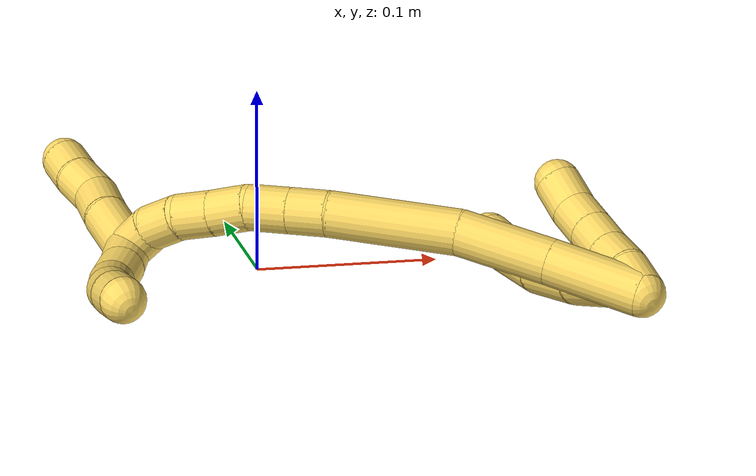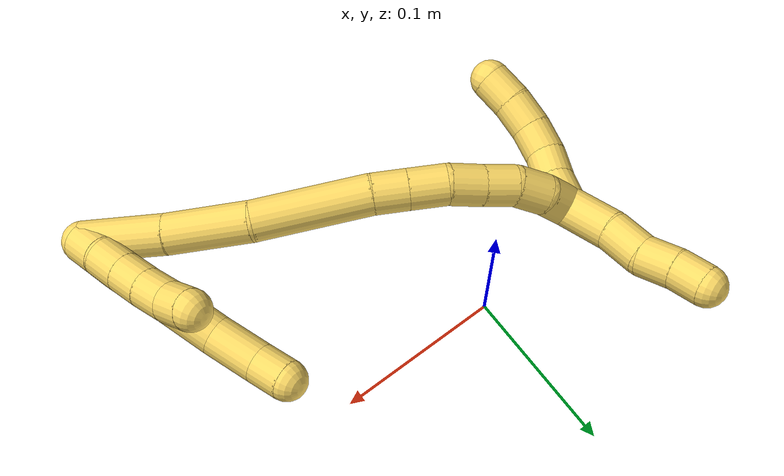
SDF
<sdf version="1.7">
 <world name="default">
  <model name="5">
   <static>0</static>
   <link name="5">
    <collision name="collision-cylinder-e_1_2_8">
     <pose>-0.000529 0.005274 0.013811 -0.364788 -0.035785 0.006601</pose>
     <geometry><cylinder><radius>0.0125</radius><length>0.029586</length></cylinder></geometry>
     <surface>
      <friction><ode><mu>1.16</mu><mu2>1.16</mu2><slip1>0</slip1><slip2>0</slip2></ode></friction>
      <contact><ode><kp>1e+06</kp><kd>1</kd><max_vel>0</max_vel><min_depth>0.001</min_depth></ode></contact>
     </surface>
    </collision>
    <visual name="visual-cylinder-e_1_2_8">
     <pose>-0.000529 0.005274 0.013811 -0.364788 -0.035785 0.006601</pose>
     <geometry><cylinder><radius>0.0125</radius><length>0.029586</length></cylinder></geometry>
     <material><ambient>1 0.858824 0.4 1</ambient></material>
    </visual>
    <collision name="collision-cylinder-e_2_8_9">
     <pose>-0.003211 0.017733 0.041059 -0.491036 -0.140342 0.03522</pose>
     <geometry><cylinder><radius>0.0125</radius><length>0.030777</length></cylinder></geometry>
     <surface>
      <friction><ode><mu>1.16</mu><mu2>1.16</mu2><slip1>0</slip1><slip2>0</slip2></ode></friction>
      <contact><ode><kp>1e+06</kp><kd>1</kd><max_vel>0</max_vel><min_depth>0.001</min_depth></ode></contact>
     </surface>
    </collision>
    <visual name="visual-cylinder-e_2_8_9">
     <pose>-0.003211 0.017733 0.041059 -0.491036 -0.140342 0.03522</pose>
     <geometry><cylinder><radius>0.0125</radius><length>0.030777</length></cylinder></geometry>
     <material><ambient>1 0.858824 0.4 1</ambient></material>
    </visual>
    <collision name="collision-cylinder-e_3_9_10">
     <pose>-0.006853 0.031807 0.071895 -0.376998 -0.079405 0.015155</pose>
     <geometry><cylinder><radius>0.0125</radius><length>0.037546</length></cylinder></geometry>
     <surface>
      <friction><ode><mu>1.16</mu><mu2>1.16</mu2><slip1>0</slip1><slip2>0</slip2></ode></friction>
      <contact><ode><kp>1e+06</kp><kd>1</kd><max_vel>0</max_vel><min_depth>0.001</min_depth></ode></contact>
     </surface>
    </collision>
    <visual name="visual-cylinder-e_3_9_10">
     <pose>-0.006853 0.031807 0.071895 -0.376998 -0.079405 0.015155</pose>
     <geometry><cylinder><radius>0.0125</radius><length>0.037546</length></cylinder></geometry>
     <material><ambient>1 0.858824 0.4 1</ambient></material>
    </visual>
    <collision name="collision-cylinder-e_4_10_11">
     <pose>-0.00926 0.041601 0.104969 -0.183262 -0.057536 0.005288</pose>
     <geometry><cylinder><radius>0.0125</radius><length>0.031937</length></cylinder></geometry>
     <surface>
      <friction><ode><mu>1.16</mu><mu2>1.16</mu2><slip1>0</slip1><slip2>0</slip2></ode></friction>
      <contact><ode><kp>1e+06</kp><kd>1</kd><max_vel>0</max_vel><min_depth>0.001</min_depth></ode></contact>
     </surface>
    </collision>
    <visual name="visual-cylinder-e_4_10_11">
     <pose>-0.00926 0.041601 0.104969 -0.183262 -0.057536 0.005288</pose>
     <geometry><cylinder><radius>0.0125</radius><length>0.031937</length></cylinder></geometry>
     <material><ambient>1 0.858824 0.4 1</ambient></material>
    </visual>
    <collision name="collision-cylinder-e_5_11_6">
     <pose>-0.010581 0.045323 0.130681 -0.081178 -0.040002 0.001625</pose>
     <geometry><cylinder><radius>0.0125</radius><length>0.020154</length></cylinder></geometry>
     <surface>
      <friction><ode><mu>1.16</mu><mu2>1.16</mu2><slip1>0</slip1><slip2>0</slip2></ode></friction>
      <contact><ode><kp>1e+06</kp><kd>1</kd><max_vel>0</max_vel><min_depth>0.001</min_depth></ode></contact>
     </surface>
    </collision>
    <visual name="visual-cylinder-e_5_11_6">
     <pose>-0.010581 0.045323 0.130681 -0.081178 -0.040002 0.001625</pose>
     <geometry><cylinder><radius>0.0125</radius><length>0.020154</length></cylinder></geometry>
     <material><ambient>1 0.858824 0.4 1</ambient></material>
    </visual>
    <collision name="collision-cylinder-e_1_2_12">
     <pose>0.000826 -0.001067 0.009909 0.107268 0.082665 0.00444</pose>
     <geometry><cylinder><radius>0.0125</radius><length>0.02</length></cylinder></geometry>
     <surface>
      <friction><ode><mu>1.16</mu><mu2>1.16</mu2><slip1>0</slip1><slip2>0</slip2></ode></friction>
      <contact><ode><kp>1e+06</kp><kd>1</kd><max_vel>0</max_vel><min_depth>0.001</min_depth></ode></contact>
     </surface>
    </collision>
    <visual name="visual-cylinder-e_1_2_12">
     <pose>0.000826 -0.001067 0.009909 0.107268 0.082665 0.00444</pose>
     <geometry><cylinder><radius>0.0125</radius><length>0.02</length></cylinder></geometry>
     <material><ambient>1 0.858824 0.4 1</ambient></material>
    </visual>
    <collision name="collision-cylinder-e_2_12_13">
     <pose>0.00202 -0.001544 0.029793 -0.059089 0.03684 -0.001089</pose>
     <geometry><cylinder><radius>0.0125</radius><length>0.02</length></cylinder></geometry>
     <surface>
      <friction><ode><mu>1.16</mu><mu2>1.16</mu2><slip1>0</slip1><slip2>0</slip2></ode></friction>
      <contact><ode><kp>1e+06</kp><kd>1</kd><max_vel>0</max_vel><min_depth>0.001</min_depth></ode></contact>
     </surface>
    </collision>
    <visual name="visual-cylinder-e_2_12_13">
     <pose>0.00202 -0.001544 0.029793 -0.059089 0.03684 -0.001089</pose>
     <geometry><cylinder><radius>0.0125</radius><length>0.02</length></cylinder></geometry>
     <material><ambient>1 0.858824 0.4 1</ambient></material>
    </visual>
    <collision name="collision-cylinder-e_3_13_14">
     <pose>0.002805 -0.001247 0.049756 0.029406 0.041666 0.000613</pose>
     <geometry><cylinder><radius>0.0125</radius><length>0.02</length></cylinder></geometry>
     <surface>
      <friction><ode><mu>1.16</mu><mu2>1.16</mu2><slip1>0</slip1><slip2>0</slip2></ode></friction>
      <contact><ode><kp>1e+06</kp><kd>1</kd><max_vel>0</max_vel><min_depth>0.001</min_depth></ode></contact>
     </surface>
    </collision>
    <visual name="visual-cylinder-e_3_13_14">
     <pose>0.002805 -0.001247 0.049756 0.029406 0.041666 0.000613</pose>
     <geometry><cylinder><radius>0.0125</radius><length>0.02</length></cylinder></geometry>
     <material><ambient>1 0.858824 0.4 1</ambient></material>
    </visual>
    <collision name="collision-cylinder-e_4_14_15">
     <pose>0.003249 -0.002224 0.069719 0.068365 0.002803 9.6e-05</pose>
     <geometry><cylinder><radius>0.0125</radius><length>0.02</length></cylinder></geometry>
     <surface>
      <friction><ode><mu>1.16</mu><mu2>1.16</mu2><slip1>0</slip1><slip2>0</slip2></ode></friction>
      <contact><ode><kp>1e+06</kp><kd>1</kd><max_vel>0</max_vel><min_depth>0.001</min_depth></ode></contact>
     </surface>
    </collision>
    <visual name="visual-cylinder-e_4_14_15">
     <pose>0.003249 -0.002224 0.069719 0.068365 0.002803 9.6e-05</pose>
     <geometry><cylinder><radius>0.0125</radius><length>0.02</length></cylinder></geometry>
     <material><ambient>1 0.858824 0.4 1</ambient></material>
    </visual>
    <collision name="collision-cylinder-e_5_15_5">
     <pose>0.003056 -0.006134 0.089158 0.328638 -0.022162 -0.003675</pose>
     <geometry><cylinder><radius>0.0125</radius><length>0.02</length></cylinder></geometry>
     <surface>
      <friction><ode><mu>1.16</mu><mu2>1.16</mu2><slip1>0</slip1><slip2>0</slip2></ode></friction>
      <contact><ode><kp>1e+06</kp><kd>1</kd><max_vel>0</max_vel><min_depth>0.001</min_depth></ode></contact>
     </surface>
    </collision>
    <visual name="visual-cylinder-e_5_15_5">
     <pose>0.003056 -0.006134 0.089158 0.328638 -0.022162 -0.003675</pose>
     <geometry><cylinder><radius>0.0125</radius><length>0.02</length></cylinder></geometry>
     <material><ambient>1 0.858824 0.4 1</ambient></material>
    </visual>
    <collision name="collision-cylinder-e_1_2_16">
     <pose>-0.015508 -0.000507 0.020968 0.024179 -0.636668 -0.007968</pose>
     <geometry><cylinder><radius>0.0125</radius><length>0.052169</length></cylinder></geometry>
     <surface>
      <friction><ode><mu>1.16</mu><mu2>1.16</mu2><slip1>0</slip1><slip2>0</slip2></ode></friction>
      <contact><ode><kp>1e+06</kp><kd>1</kd><max_vel>0</max_vel><min_depth>0.001</min_depth></ode></contact>
     </surface>
    </collision>
    <visual name="visual-cylinder-e_1_2_16">
     <pose>-0.015508 -0.000507 0.020968 0.024179 -0.636668 -0.007968</pose>
     <geometry><cylinder><radius>0.0125</radius><length>0.052169</length></cylinder></geometry>
     <material><ambient>1 0.858824 0.4 1</ambient></material>
    </visual>
    <collision name="collision-cylinder-e_2_16_17">
     <pose>-0.047589 -0.001995 0.061711 0.04954 -0.696928 -0.018001</pose>
     <geometry><cylinder><radius>0.0125</radius><length>0.05164</length></cylinder></geometry>
     <surface>
      <friction><ode><mu>1.16</mu><mu2>1.16</mu2><slip1>0</slip1><slip2>0</slip2></ode></friction>
      <contact><ode><kp>1e+06</kp><kd>1</kd><max_vel>0</max_vel><min_depth>0.001</min_depth></ode></contact>
     </surface>
    </collision>
    <visual name="visual-cylinder-e_2_16_17">
     <pose>-0.047589 -0.001995 0.061711 0.04954 -0.696928 -0.018001</pose>
     <geometry><cylinder><radius>0.0125</radius><length>0.05164</length></cylinder></geometry>
     <material><ambient>1 0.858824 0.4 1</ambient></material>
    </visual>
    <collision name="collision-cylinder-e_3_17_18">
     <pose>-0.091159 -0.001111 0.104449 -0.080995 -0.864362 0.037376</pose>
     <geometry><cylinder><radius>0.0125</radius><length>0.070982</length></cylinder></geometry>
     <surface>
      <friction><ode><mu>1.16</mu><mu2>1.16</mu2><slip1>0</slip1><slip2>0</slip2></ode></friction>
      <contact><ode><kp>1e+06</kp><kd>1</kd><max_vel>0</max_vel><min_depth>0.001</min_depth></ode></contact>
     </surface>
    </collision>
    <visual name="visual-cylinder-e_3_17_18">
     <pose>-0.091159 -0.001111 0.104449 -0.080995 -0.864362 0.037376</pose>
     <geometry><cylinder><radius>0.0125</radius><length>0.070982</length></cylinder></geometry>
     <material><ambient>1 0.858824 0.4 1</ambient></material>
    </visual>
    <collision name="collision-cylinder-e_4_18_19">
     <pose>-0.125783 0.002247 0.134428 -0.20978 -0.815942 0.090943</pose>
     <geometry><cylinder><radius>0.0125</radius><length>0.020941</length></cylinder></geometry>
     <surface>
      <friction><ode><mu>1.16</mu><mu2>1.16</mu2><slip1>0</slip1><slip2>0</slip2></ode></friction>
      <contact><ode><kp>1e+06</kp><kd>1</kd><max_vel>0</max_vel><min_depth>0.001</min_depth></ode></contact>
     </surface>
    </collision>
    <visual name="visual-cylinder-e_4_18_19">
     <pose>-0.125783 0.002247 0.134428 -0.20978 -0.815942 0.090943</pose>
     <geometry><cylinder><radius>0.0125</radius><length>0.020941</length></cylinder></geometry>
     <material><ambient>1 0.858824 0.4 1</ambient></material>
    </visual>
    <collision name="collision-cylinder-e_5_19_20">
     <pose>-0.141809 0.005448 0.149221 -0.216089 -0.812202 0.093215</pose>
     <geometry><cylinder><radius>0.0125</radius><length>0.023146</length></cylinder></geometry>
     <surface>
      <friction><ode><mu>1.16</mu><mu2>1.16</mu2><slip1>0</slip1><slip2>0</slip2></ode></friction>
      <contact><ode><kp>1e+06</kp><kd>1</kd><max_vel>0</max_vel><min_depth>0.001</min_depth></ode></contact>
     </surface>
    </collision>
    <visual name="visual-cylinder-e_5_19_20">
     <pose>-0.141809 0.005448 0.149221 -0.216089 -0.812202 0.093215</pose>
     <geometry><cylinder><radius>0.0125</radius><length>0.023146</length></cylinder></geometry>
     <material><ambient>1 0.858824 0.4 1</ambient></material>
    </visual>
    <collision name="collision-cylinder-e_6_20_21">
     <pose>-0.1574 0.011265 0.163506 -0.563254 -0.751344 0.227232</pose>
     <geometry><cylinder><radius>0.0125</radius><length>0.02107</length></cylinder></geometry>
     <surface>
      <friction><ode><mu>1.16</mu><mu2>1.16</mu2><slip1>0</slip1><slip2>0</slip2></ode></friction>
      <contact><ode><kp>1e+06</kp><kd>1</kd><max_vel>0</max_vel><min_depth>0.001</min_depth></ode></contact>
     </surface>
    </collision>
    <visual name="visual-cylinder-e_6_20_21">
     <pose>-0.1574 0.011265 0.163506 -0.563254 -0.751344 0.227232</pose>
     <geometry><cylinder><radius>0.0125</radius><length>0.02107</length></cylinder></geometry>
     <material><ambient>1 0.858824 0.4 1</ambient></material>
    </visual>
    <collision name="collision-cylinder-e_7_21_22">
     <pose>-0.171561 0.018825 0.176315 -0.500925 -0.770423 0.206726</pose>
     <geometry><cylinder><radius>0.0125</radius><length>0.020016</length></cylinder></geometry>
     <surface>
      <friction><ode><mu>1.16</mu><mu2>1.16</mu2><slip1>0</slip1><slip2>0</slip2></ode></friction>
      <contact><ode><kp>1e+06</kp><kd>1</kd><max_vel>0</max_vel><min_depth>0.001</min_depth></ode></contact>
     </surface>
    </collision>
    <visual name="visual-cylinder-e_7_21_22">
     <pose>-0.171561 0.018825 0.176315 -0.500925 -0.770423 0.206726</pose>
     <geometry><cylinder><radius>0.0125</radius><length>0.020016</length></cylinder></geometry>
     <material><ambient>1 0.858824 0.4 1</ambient></material>
    </visual>
    <collision name="collision-cylinder-e_8_22_23">
     <pose>-0.18377 0.028174 0.188777 -0.763575 -0.55068 0.225887</pose>
     <geometry><cylinder><radius>0.0125</radius><length>0.020024</length></cylinder></geometry>
     <surface>
      <friction><ode><mu>1.16</mu><mu2>1.16</mu2><slip1>0</slip1><slip2>0</slip2></ode></friction>
      <contact><ode><kp>1e+06</kp><kd>1</kd><max_vel>0</max_vel><min_depth>0.001</min_depth></ode></contact>
     </surface>
    </collision>
    <visual name="visual-cylinder-e_8_22_23">
     <pose>-0.18377 0.028174 0.188777 -0.763575 -0.55068 0.225887</pose>
     <geometry><cylinder><radius>0.0125</radius><length>0.020024</length></cylinder></geometry>
     <material><ambient>1 0.858824 0.4 1</ambient></material>
    </visual>
    <collision name="collision-cylinder-e_9_23_1">
     <pose>-0.193651 0.042015 0.198878 -1.11056 -0.482425 0.3029</pose>
     <geometry><cylinder><radius>0.0125</radius><length>0.020012</length></cylinder></geometry>
     <surface>
      <friction><ode><mu>1.16</mu><mu2>1.16</mu2><slip1>0</slip1><slip2>0</slip2></ode></friction>
      <contact><ode><kp>1e+06</kp><kd>1</kd><max_vel>0</max_vel><min_depth>0.001</min_depth></ode></contact>
     </surface>
    </collision>
    <visual name="visual-cylinder-e_9_23_1">
     <pose>-0.193651 0.042015 0.198878 -1.11056 -0.482425 0.3029</pose>
     <geometry><cylinder><radius>0.0125</radius><length>0.020012</length></cylinder></geometry>
     <material><ambient>1 0.858824 0.4 1</ambient></material>
    </visual>
    <collision name="collision-cylinder-e_1_1_24">
     <pose>-0.203954 0.049615 0.194578 3.10006 -0.601745 -3.00794</pose>
     <geometry><cylinder><radius>0.0125</radius><length>0.02</length></cylinder></geometry>
     <surface>
      <friction><ode><mu>1.16</mu><mu2>1.16</mu2><slip1>0</slip1><slip2>0</slip2></ode></friction>
      <contact><ode><kp>1e+06</kp><kd>1</kd><max_vel>0</max_vel><min_depth>0.001</min_depth></ode></contact>
     </surface>
    </collision>
    <visual name="visual-cylinder-e_1_1_24">
     <pose>-0.203954 0.049615 0.194578 3.10006 -0.601745 -3.00794</pose>
     <geometry><cylinder><radius>0.0125</radius><length>0.02</length></cylinder></geometry>
     <material><ambient>1 0.858824 0.4 1</ambient></material>
    </visual>
    <collision name="collision-cylinder-e_2_24_25">
     <pose>-0.215865 0.048071 0.17863 2.98702 -0.675234 -2.70737</pose>
     <geometry><cylinder><radius>0.0125</radius><length>0.02</length></cylinder></geometry>
     <surface>
      <friction><ode><mu>1.16</mu><mu2>1.16</mu2><slip1>0</slip1><slip2>0</slip2></ode></friction>
      <contact><ode><kp>1e+06</kp><kd>1</kd><max_vel>0</max_vel><min_depth>0.001</min_depth></ode></contact>
     </surface>
    </collision>
    <visual name="visual-cylinder-e_2_24_25">
     <pose>-0.215865 0.048071 0.17863 2.98702 -0.675234 -2.70737</pose>
     <geometry><cylinder><radius>0.0125</radius><length>0.02</length></cylinder></geometry>
     <material><ambient>1 0.858824 0.4 1</ambient></material>
    </visual>
    <collision name="collision-cylinder-e_3_25_26">
     <pose>-0.226332 0.043015 0.162709 2.70253 -0.435127 -1.56149</pose>
     <geometry><cylinder><radius>0.0125</radius><length>0.02</length></cylinder></geometry>
     <surface>
      <friction><ode><mu>1.16</mu><mu2>1.16</mu2><slip1>0</slip1><slip2>0</slip2></ode></friction>
      <contact><ode><kp>1e+06</kp><kd>1</kd><max_vel>0</max_vel><min_depth>0.001</min_depth></ode></contact>
     </surface>
    </collision>
    <visual name="visual-cylinder-e_3_25_26">
     <pose>-0.226332 0.043015 0.162709 2.70253 -0.435127 -1.56149</pose>
     <geometry><cylinder><radius>0.0125</radius><length>0.02</length></cylinder></geometry>
     <material><ambient>1 0.858824 0.4 1</ambient></material>
    </visual>
    <collision name="collision-cylinder-e_4_26_27">
     <pose>-0.233254 0.034638 0.146002 2.65259 -0.274101 -1.00995</pose>
     <geometry><cylinder><radius>0.0125</radius><length>0.02</length></cylinder></geometry>
     <surface>
      <friction><ode><mu>1.16</mu><mu2>1.16</mu2><slip1>0</slip1><slip2>0</slip2></ode></friction>
      <contact><ode><kp>1e+06</kp><kd>1</kd><max_vel>0</max_vel><min_depth>0.001</min_depth></ode></contact>
     </surface>
    </collision>
    <visual name="visual-cylinder-e_4_26_27">
     <pose>-0.233254 0.034638 0.146002 2.65259 -0.274101 -1.00995</pose>
     <geometry><cylinder><radius>0.0125</radius><length>0.02</length></cylinder></geometry>
     <material><ambient>1 0.858824 0.4 1</ambient></material>
    </visual>
    <collision name="collision-cylinder-e_5_27_4">
     <pose>-0.237598 0.026086 0.128499 2.72086 -0.164476 -0.736782</pose>
     <geometry><cylinder><radius>0.0125</radius><length>0.02</length></cylinder></geometry>
     <surface>
      <friction><ode><mu>1.16</mu><mu2>1.16</mu2><slip1>0</slip1><slip2>0</slip2></ode></friction>
      <contact><ode><kp>1e+06</kp><kd>1</kd><max_vel>0</max_vel><min_depth>0.001</min_depth></ode></contact>
     </surface>
    </collision>
    <visual name="visual-cylinder-e_5_27_4">
     <pose>-0.237598 0.026086 0.128499 2.72086 -0.164476 -0.736782</pose>
     <geometry><cylinder><radius>0.0125</radius><length>0.02</length></cylinder></geometry>
     <material><ambient>1 0.858824 0.4 1</ambient></material>
    </visual>
    <collision name="collision-cylinder-e_1_1_28">
     <pose>-0.197425 0.049932 0.219668 0.001511 0.05146 3.9e-05</pose>
     <geometry><cylinder><radius>0.0125</radius><length>0.033751</length></cylinder></geometry>
     <surface>
      <friction><ode><mu>1.16</mu><mu2>1.16</mu2><slip1>0</slip1><slip2>0</slip2></ode></friction>
      <contact><ode><kp>1e+06</kp><kd>1</kd><max_vel>0</max_vel><min_depth>0.001</min_depth></ode></contact>
     </surface>
    </collision>
    <visual name="visual-cylinder-e_1_1_28">
     <pose>-0.197425 0.049932 0.219668 0.001511 0.05146 3.9e-05</pose>
     <geometry><cylinder><radius>0.0125</radius><length>0.033751</length></cylinder></geometry>
     <material><ambient>1 0.858824 0.4 1</ambient></material>
    </visual>
    <collision name="collision-cylinder-e_2_28_29">
     <pose>-0.194306 0.051036 0.248462 -0.094312 0.185473 -0.008778</pose>
     <geometry><cylinder><radius>0.0125</radius><length>0.024408</length></cylinder></geometry>
     <surface>
      <friction><ode><mu>1.16</mu><mu2>1.16</mu2><slip1>0</slip1><slip2>0</slip2></ode></friction>
      <contact><ode><kp>1e+06</kp><kd>1</kd><max_vel>0</max_vel><min_depth>0.001</min_depth></ode></contact>
     </surface>
    </collision>
    <visual name="visual-cylinder-e_2_28_29">
     <pose>-0.194306 0.051036 0.248462 -0.094312 0.185473 -0.008778</pose>
     <geometry><cylinder><radius>0.0125</radius><length>0.024408</length></cylinder></geometry>
     <material><ambient>1 0.858824 0.4 1</ambient></material>
    </visual>
    <collision name="collision-cylinder-e_3_29_30">
     <pose>-0.193049 0.052116 0.271228 0.004546 -0.09147 -0.000208</pose>
     <geometry><cylinder><radius>0.0125</radius><length>0.02174</length></cylinder></geometry>
     <surface>
      <friction><ode><mu>1.16</mu><mu2>1.16</mu2><slip1>0</slip1><slip2>0</slip2></ode></friction>
      <contact><ode><kp>1e+06</kp><kd>1</kd><max_vel>0</max_vel><min_depth>0.001</min_depth></ode></contact>
     </surface>
    </collision>
    <visual name="visual-cylinder-e_3_29_30">
     <pose>-0.193049 0.052116 0.271228 0.004546 -0.09147 -0.000208</pose>
     <geometry><cylinder><radius>0.0125</radius><length>0.02174</length></cylinder></geometry>
     <material><ambient>1 0.858824 0.4 1</ambient></material>
    </visual>
    <collision name="collision-cylinder-e_4_30_3">
     <pose>-0.193546 0.052404 0.292085 -0.033587 0.049342 -0.000829</pose>
     <geometry><cylinder><radius>0.0125</radius><length>0.020101</length></cylinder></geometry>
     <surface>
      <friction><ode><mu>1.16</mu><mu2>1.16</mu2><slip1>0</slip1><slip2>0</slip2></ode></friction>
      <contact><ode><kp>1e+06</kp><kd>1</kd><max_vel>0</max_vel><min_depth>0.001</min_depth></ode></contact>
     </surface>
    </collision>
    <visual name="visual-cylinder-e_4_30_3">
     <pose>-0.193546 0.052404 0.292085 -0.033587 0.049342 -0.000829</pose>
     <geometry><cylinder><radius>0.0125</radius><length>0.020101</length></cylinder></geometry>
     <material><ambient>1 0.858824 0.4 1</ambient></material>
    </visual>
    <collision name="collision-sphere-3">
     <pose>-0.19305 0.052741 0.302118 0 -0 0</pose>
     <geometry><sphere><radius>0.0125</radius></sphere></geometry>
     <surface>
      <friction><ode><mu>1.16</mu><mu2>1.16</mu2><slip1>0</slip1><slip2>0</slip2></ode></friction>
      <contact><ode><kp>1e+06</kp><kd>1</kd><max_vel>0</max_vel><min_depth>0.001</min_depth></ode></contact>
     </surface>
    </collision>
    <visual name="visual-sphere-3">
     <pose>-0.19305 0.052741 0.302118 0 -0 0</pose>
     <geometry><sphere><radius>0.0125</radius></sphere></geometry>
     <material><ambient>1 0.858824 0.4 1</ambient></material>
    </visual>
    <collision name="collision-sphere-30">
     <pose>-0.194042 0.052067 0.282053 0 -0 0</pose>
     <geometry><sphere><radius>0.0125</radius></sphere></geometry>
     <surface>
      <friction><ode><mu>1.16</mu><mu2>1.16</mu2><slip1>0</slip1><slip2>0</slip2></ode></friction>
      <contact><ode><kp>1e+06</kp><kd>1</kd><max_vel>0</max_vel><min_depth>0.001</min_depth></ode></contact>
     </surface>
    </collision>
    <visual name="visual-sphere-30">
     <pose>-0.194042 0.052067 0.282053 0 -0 0</pose>
     <geometry><sphere><radius>0.0125</radius></sphere></geometry>
     <material><ambient>1 0.858824 0.4 1</ambient></material>
    </visual>
    <collision name="collision-sphere-29">
     <pose>-0.192056 0.052166 0.260404 0 -0 0</pose>
     <geometry><sphere><radius>0.0125</radius></sphere></geometry>
     <surface>
      <friction><ode><mu>1.16</mu><mu2>1.16</mu2><slip1>0</slip1><slip2>0</slip2></ode></friction>
      <contact><ode><kp>1e+06</kp><kd>1</kd><max_vel>0</max_vel><min_depth>0.001</min_depth></ode></contact>
     </surface>
    </collision>
    <visual name="visual-sphere-29">
     <pose>-0.192056 0.052166 0.260404 0 -0 0</pose>
     <geometry><sphere><radius>0.0125</radius></sphere></geometry>
     <material><ambient>1 0.858824 0.4 1</ambient></material>
    </visual>
    <collision name="collision-sphere-28">
     <pose>-0.196557 0.049906 0.236521 0 -0 0</pose>
     <geometry><sphere><radius>0.0125</radius></sphere></geometry>
     <surface>
      <friction><ode><mu>1.16</mu><mu2>1.16</mu2><slip1>0</slip1><slip2>0</slip2></ode></friction>
      <contact><ode><kp>1e+06</kp><kd>1</kd><max_vel>0</max_vel><min_depth>0.001</min_depth></ode></contact>
     </surface>
    </collision>
    <visual name="visual-sphere-28">
     <pose>-0.196557 0.049906 0.236521 0 -0 0</pose>
     <geometry><sphere><radius>0.0125</radius></sphere></geometry>
     <material><ambient>1 0.858824 0.4 1</ambient></material>
    </visual>
    <collision name="collision-sphere-4">
     <pose>-0.239235 0.022057 0.119495 0 -0 0</pose>
     <geometry><sphere><radius>0.0125</radius></sphere></geometry>
     <surface>
      <friction><ode><mu>1.16</mu><mu2>1.16</mu2><slip1>0</slip1><slip2>0</slip2></ode></friction>
      <contact><ode><kp>1e+06</kp><kd>1</kd><max_vel>0</max_vel><min_depth>0.001</min_depth></ode></contact>
     </surface>
    </collision>
    <visual name="visual-sphere-4">
     <pose>-0.239235 0.022057 0.119495 0 -0 0</pose>
     <geometry><sphere><radius>0.0125</radius></sphere></geometry>
     <material><ambient>1 0.858824 0.4 1</ambient></material>
    </visual>
    <collision name="collision-sphere-27">
     <pose>-0.23596 0.030116 0.137504 0 -0 0</pose>
     <geometry><sphere><radius>0.0125</radius></sphere></geometry>
     <surface>
      <friction><ode><mu>1.16</mu><mu2>1.16</mu2><slip1>0</slip1><slip2>0</slip2></ode></friction>
      <contact><ode><kp>1e+06</kp><kd>1</kd><max_vel>0</max_vel><min_depth>0.001</min_depth></ode></contact>
     </surface>
    </collision>
    <visual name="visual-sphere-27">
     <pose>-0.23596 0.030116 0.137504 0 -0 0</pose>
     <geometry><sphere><radius>0.0125</radius></sphere></geometry>
     <material><ambient>1 0.858824 0.4 1</ambient></material>
    </visual>
    <collision name="collision-sphere-26">
     <pose>-0.230547 0.03916 0.154501 0 -0 0</pose>
     <geometry><sphere><radius>0.0125</radius></sphere></geometry>
     <surface>
      <friction><ode><mu>1.16</mu><mu2>1.16</mu2><slip1>0</slip1><slip2>0</slip2></ode></friction>
      <contact><ode><kp>1e+06</kp><kd>1</kd><max_vel>0</max_vel><min_depth>0.001</min_depth></ode></contact>
     </surface>
    </collision>
    <visual name="visual-sphere-26">
     <pose>-0.230547 0.03916 0.154501 0 -0 0</pose>
     <geometry><sphere><radius>0.0125</radius></sphere></geometry>
     <material><ambient>1 0.858824 0.4 1</ambient></material>
    </visual>
    <collision name="collision-sphere-25">
     <pose>-0.222116 0.046869 0.170917 0 -0 0</pose>
     <geometry><sphere><radius>0.0125</radius></sphere></geometry>
     <surface>
      <friction><ode><mu>1.16</mu><mu2>1.16</mu2><slip1>0</slip1><slip2>0</slip2></ode></friction>
      <contact><ode><kp>1e+06</kp><kd>1</kd><max_vel>0</max_vel><min_depth>0.001</min_depth></ode></contact>
     </surface>
    </collision>
    <visual name="visual-sphere-25">
     <pose>-0.222116 0.046869 0.170917 0 -0 0</pose>
     <geometry><sphere><radius>0.0125</radius></sphere></geometry>
     <material><ambient>1 0.858824 0.4 1</ambient></material>
    </visual>
    <collision name="collision-sphere-24">
     <pose>-0.209615 0.049273 0.186342 0 -0 0</pose>
     <geometry><sphere><radius>0.0125</radius></sphere></geometry>
     <surface>
      <friction><ode><mu>1.16</mu><mu2>1.16</mu2><slip1>0</slip1><slip2>0</slip2></ode></friction>
      <contact><ode><kp>1e+06</kp><kd>1</kd><max_vel>0</max_vel><min_depth>0.001</min_depth></ode></contact>
     </surface>
    </collision>
    <visual name="visual-sphere-24">
     <pose>-0.209615 0.049273 0.186342 0 -0 0</pose>
     <geometry><sphere><radius>0.0125</radius></sphere></geometry>
     <material><ambient>1 0.858824 0.4 1</ambient></material>
    </visual>
    <collision name="collision-sphere-1">
     <pose>-0.198293 0.049957 0.202815 0 -0 0</pose>
     <geometry><sphere><radius>0.0125</radius></sphere></geometry>
     <surface>
      <friction><ode><mu>1.16</mu><mu2>1.16</mu2><slip1>0</slip1><slip2>0</slip2></ode></friction>
      <contact><ode><kp>1e+06</kp><kd>1</kd><max_vel>0</max_vel><min_depth>0.001</min_depth></ode></contact>
     </surface>
    </collision>
    <visual name="visual-sphere-1">
     <pose>-0.198293 0.049957 0.202815 0 -0 0</pose>
     <geometry><sphere><radius>0.0125</radius></sphere></geometry>
     <material><ambient>1 0.858824 0.4 1</ambient></material>
    </visual>
    <collision name="collision-sphere-23">
     <pose>-0.189009 0.034073 0.194941 0 -0 0</pose>
     <geometry><sphere><radius>0.0125</radius></sphere></geometry>
     <surface>
      <friction><ode><mu>1.16</mu><mu2>1.16</mu2><slip1>0</slip1><slip2>0</slip2></ode></friction>
      <contact><ode><kp>1e+06</kp><kd>1</kd><max_vel>0</max_vel><min_depth>0.001</min_depth></ode></contact>
     </surface>
    </collision>
    <visual name="visual-sphere-23">
     <pose>-0.189009 0.034073 0.194941 0 -0 0</pose>
     <geometry><sphere><radius>0.0125</radius></sphere></geometry>
     <material><ambient>1 0.858824 0.4 1</ambient></material>
    </visual>
    <collision name="collision-sphere-22">
     <pose>-0.178531 0.022274 0.182614 0 -0 0</pose>
     <geometry><sphere><radius>0.0125</radius></sphere></geometry>
     <surface>
      <friction><ode><mu>1.16</mu><mu2>1.16</mu2><slip1>0</slip1><slip2>0</slip2></ode></friction>
      <contact><ode><kp>1e+06</kp><kd>1</kd><max_vel>0</max_vel><min_depth>0.001</min_depth></ode></contact>
     </surface>
    </collision>
    <visual name="visual-sphere-22">
     <pose>-0.178531 0.022274 0.182614 0 -0 0</pose>
     <geometry><sphere><radius>0.0125</radius></sphere></geometry>
     <material><ambient>1 0.858824 0.4 1</ambient></material>
    </visual>
    <collision name="collision-sphere-21">
     <pose>-0.164591 0.015376 0.170015 0 -0 0</pose>
     <geometry><sphere><radius>0.0125</radius></sphere></geometry>
     <surface>
      <friction><ode><mu>1.16</mu><mu2>1.16</mu2><slip1>0</slip1><slip2>0</slip2></ode></friction>
      <contact><ode><kp>1e+06</kp><kd>1</kd><max_vel>0</max_vel><min_depth>0.001</min_depth></ode></contact>
     </surface>
    </collision>
    <visual name="visual-sphere-21">
     <pose>-0.164591 0.015376 0.170015 0 -0 0</pose>
     <geometry><sphere><radius>0.0125</radius></sphere></geometry>
     <material><ambient>1 0.858824 0.4 1</ambient></material>
    </visual>
    <collision name="collision-sphere-6">
     <pose>-0.010984 0.04614 0.140716 0 -0 0</pose>
     <geometry><sphere><radius>0.0125</radius></sphere></geometry>
     <surface>
      <friction><ode><mu>1.16</mu><mu2>1.16</mu2><slip1>0</slip1><slip2>0</slip2></ode></friction>
      <contact><ode><kp>1e+06</kp><kd>1</kd><max_vel>0</max_vel><min_depth>0.001</min_depth></ode></contact>
     </surface>
    </collision>
    <visual name="visual-sphere-6">
     <pose>-0.010984 0.04614 0.140716 0 -0 0</pose>
     <geometry><sphere><radius>0.0125</radius></sphere></geometry>
     <material><ambient>1 0.858824 0.4 1</ambient></material>
    </visual>
    <collision name="collision-sphere-11">
     <pose>-0.010178 0.044507 0.120645 0 -0 0</pose>
     <geometry><sphere><radius>0.0125</radius></sphere></geometry>
     <surface>
      <friction><ode><mu>1.16</mu><mu2>1.16</mu2><slip1>0</slip1><slip2>0</slip2></ode></friction>
      <contact><ode><kp>1e+06</kp><kd>1</kd><max_vel>0</max_vel><min_depth>0.001</min_depth></ode></contact>
     </surface>
    </collision>
    <visual name="visual-sphere-11">
     <pose>-0.010178 0.044507 0.120645 0 -0 0</pose>
     <geometry><sphere><radius>0.0125</radius></sphere></geometry>
     <material><ambient>1 0.858824 0.4 1</ambient></material>
    </visual>
    <collision name="collision-sphere-10">
     <pose>-0.008342 0.038696 0.089294 0 -0 0</pose>
     <geometry><sphere><radius>0.0125</radius></sphere></geometry>
     <surface>
      <friction><ode><mu>1.16</mu><mu2>1.16</mu2><slip1>0</slip1><slip2>0</slip2></ode></friction>
      <contact><ode><kp>1e+06</kp><kd>1</kd><max_vel>0</max_vel><min_depth>0.001</min_depth></ode></contact>
     </surface>
    </collision>
    <visual name="visual-sphere-10">
     <pose>-0.008342 0.038696 0.089294 0 -0 0</pose>
     <geometry><sphere><radius>0.0125</radius></sphere></geometry>
     <material><ambient>1 0.858824 0.4 1</ambient></material>
    </visual>
    <collision name="collision-sphere-9">
     <pose>-0.005364 0.024918 0.054495 0 -0 0</pose>
     <geometry><sphere><radius>0.0125</radius></sphere></geometry>
     <surface>
      <friction><ode><mu>1.16</mu><mu2>1.16</mu2><slip1>0</slip1><slip2>0</slip2></ode></friction>
      <contact><ode><kp>1e+06</kp><kd>1</kd><max_vel>0</max_vel><min_depth>0.001</min_depth></ode></contact>
     </surface>
    </collision>
    <visual name="visual-sphere-9">
     <pose>-0.005364 0.024918 0.054495 0 -0 0</pose>
     <geometry><sphere><radius>0.0125</radius></sphere></geometry>
     <material><ambient>1 0.858824 0.4 1</ambient></material>
    </visual>
    <collision name="collision-sphere-2">
     <geometry><sphere><radius>0.0125</radius></sphere></geometry>
     <surface>
      <friction><ode><mu>1.16</mu><mu2>1.16</mu2><slip1>0</slip1><slip2>0</slip2></ode></friction>
      <contact><ode><kp>1e+06</kp><kd>1</kd><max_vel>0</max_vel><min_depth>0.001</min_depth></ode></contact>
     </surface>
    </collision>
    <visual name="visual-sphere-2">
     <geometry><sphere><radius>0.0125</radius></sphere></geometry>
     <material><ambient>1 0.858824 0.4 1</ambient></material>
    </visual>
    <collision name="collision-sphere-19">
     <pose>-0.133409 0.003741 0.141445 0 -0 0</pose>
     <geometry><sphere><radius>0.0125</radius></sphere></geometry>
     <surface>
      <friction><ode><mu>1.16</mu><mu2>1.16</mu2><slip1>0</slip1><slip2>0</slip2></ode></friction>
      <contact><ode><kp>1e+06</kp><kd>1</kd><max_vel>0</max_vel><min_depth>0.001</min_depth></ode></contact>
     </surface>
    </collision>
    <visual name="visual-sphere-19">
     <pose>-0.133409 0.003741 0.141445 0 -0 0</pose>
     <geometry><sphere><radius>0.0125</radius></sphere></geometry>
     <material><ambient>1 0.858824 0.4 1</ambient></material>
    </visual>
    <collision name="collision-sphere-8">
     <pose>-0.001059 0.010548 0.027622 0 -0 0</pose>
     <geometry><sphere><radius>0.0125</radius></sphere></geometry>
     <surface>
      <friction><ode><mu>1.16</mu><mu2>1.16</mu2><slip1>0</slip1><slip2>0</slip2></ode></friction>
      <contact><ode><kp>1e+06</kp><kd>1</kd><max_vel>0</max_vel><min_depth>0.001</min_depth></ode></contact>
     </surface>
    </collision>
    <visual name="visual-sphere-8">
     <pose>-0.001059 0.010548 0.027622 0 -0 0</pose>
     <geometry><sphere><radius>0.0125</radius></sphere></geometry>
     <material><ambient>1 0.858824 0.4 1</ambient></material>
    </visual>
    <collision name="collision-sphere-12">
     <pose>0.001651 -0.002134 0.019817 0 -0 0</pose>
     <geometry><sphere><radius>0.0125</radius></sphere></geometry>
     <surface>
      <friction><ode><mu>1.16</mu><mu2>1.16</mu2><slip1>0</slip1><slip2>0</slip2></ode></friction>
      <contact><ode><kp>1e+06</kp><kd>1</kd><max_vel>0</max_vel><min_depth>0.001</min_depth></ode></contact>
     </surface>
    </collision>
    <visual name="visual-sphere-12">
     <pose>0.001651 -0.002134 0.019817 0 -0 0</pose>
     <geometry><sphere><radius>0.0125</radius></sphere></geometry>
     <material><ambient>1 0.858824 0.4 1</ambient></material>
    </visual>
    <collision name="collision-sphere-13">
     <pose>0.002388 -0.000954 0.039769 0 -0 0</pose>
     <geometry><sphere><radius>0.0125</radius></sphere></geometry>
     <surface>
      <friction><ode><mu>1.16</mu><mu2>1.16</mu2><slip1>0</slip1><slip2>0</slip2></ode></friction>
      <contact><ode><kp>1e+06</kp><kd>1</kd><max_vel>0</max_vel><min_depth>0.001</min_depth></ode></contact>
     </surface>
    </collision>
    <visual name="visual-sphere-13">
     <pose>0.002388 -0.000954 0.039769 0 -0 0</pose>
     <geometry><sphere><radius>0.0125</radius></sphere></geometry>
     <material><ambient>1 0.858824 0.4 1</ambient></material>
    </visual>
    <collision name="collision-sphere-14">
     <pose>0.003221 -0.001541 0.059743 0 -0 0</pose>
     <geometry><sphere><radius>0.0125</radius></sphere></geometry>
     <surface>
      <friction><ode><mu>1.16</mu><mu2>1.16</mu2><slip1>0</slip1><slip2>0</slip2></ode></friction>
      <contact><ode><kp>1e+06</kp><kd>1</kd><max_vel>0</max_vel><min_depth>0.001</min_depth></ode></contact>
     </surface>
    </collision>
    <visual name="visual-sphere-14">
     <pose>0.003221 -0.001541 0.059743 0 -0 0</pose>
     <geometry><sphere><radius>0.0125</radius></sphere></geometry>
     <material><ambient>1 0.858824 0.4 1</ambient></material>
    </visual>
    <collision name="collision-sphere-15">
     <pose>0.003277 -0.002907 0.079696 0 -0 0</pose>
     <geometry><sphere><radius>0.0125</radius></sphere></geometry>
     <surface>
      <friction><ode><mu>1.16</mu><mu2>1.16</mu2><slip1>0</slip1><slip2>0</slip2></ode></friction>
      <contact><ode><kp>1e+06</kp><kd>1</kd><max_vel>0</max_vel><min_depth>0.001</min_depth></ode></contact>
     </surface>
    </collision>
    <visual name="visual-sphere-15">
     <pose>0.003277 -0.002907 0.079696 0 -0 0</pose>
     <geometry><sphere><radius>0.0125</radius></sphere></geometry>
     <material><ambient>1 0.858824 0.4 1</ambient></material>
    </visual>
    <collision name="collision-sphere-5">
     <pose>0.002834 -0.009361 0.098621 0 -0 0</pose>
     <geometry><sphere><radius>0.0125</radius></sphere></geometry>
     <surface>
      <friction><ode><mu>1.16</mu><mu2>1.16</mu2><slip1>0</slip1><slip2>0</slip2></ode></friction>
      <contact><ode><kp>1e+06</kp><kd>1</kd><max_vel>0</max_vel><min_depth>0.001</min_depth></ode></contact>
     </surface>
    </collision>
    <visual name="visual-sphere-5">
     <pose>0.002834 -0.009361 0.098621 0 -0 0</pose>
     <geometry><sphere><radius>0.0125</radius></sphere></geometry>
     <material><ambient>1 0.858824 0.4 1</ambient></material>
    </visual>
    <collision name="collision-sphere-16">
     <pose>-0.031015 -0.001014 0.041936 0 -0 0</pose>
     <geometry><sphere><radius>0.0125</radius></sphere></geometry>
     <surface>
      <friction><ode><mu>1.16</mu><mu2>1.16</mu2><slip1>0</slip1><slip2>0</slip2></ode></friction>
      <contact><ode><kp>1e+06</kp><kd>1</kd><max_vel>0</max_vel><min_depth>0.001</min_depth></ode></contact>
     </surface>
    </collision>
    <visual name="visual-sphere-16">
     <pose>-0.031015 -0.001014 0.041936 0 -0 0</pose>
     <geometry><sphere><radius>0.0125</radius></sphere></geometry>
     <material><ambient>1 0.858824 0.4 1</ambient></material>
    </visual>
    <collision name="collision-sphere-17">
     <pose>-0.064162 -0.002975 0.081486 0 -0 0</pose>
     <geometry><sphere><radius>0.0125</radius></sphere></geometry>
     <surface>
      <friction><ode><mu>1.16</mu><mu2>1.16</mu2><slip1>0</slip1><slip2>0</slip2></ode></friction>
      <contact><ode><kp>1e+06</kp><kd>1</kd><max_vel>0</max_vel><min_depth>0.001</min_depth></ode></contact>
     </surface>
    </collision>
    <visual name="visual-sphere-17">
     <pose>-0.064162 -0.002975 0.081486 0 -0 0</pose>
     <geometry><sphere><radius>0.0125</radius></sphere></geometry>
     <material><ambient>1 0.858824 0.4 1</ambient></material>
    </visual>
    <collision name="collision-sphere-18">
     <pose>-0.118156 0.000753 0.127411 0 -0 0</pose>
     <geometry><sphere><radius>0.0125</radius></sphere></geometry>
     <surface>
      <friction><ode><mu>1.16</mu><mu2>1.16</mu2><slip1>0</slip1><slip2>0</slip2></ode></friction>
      <contact><ode><kp>1e+06</kp><kd>1</kd><max_vel>0</max_vel><min_depth>0.001</min_depth></ode></contact>
     </surface>
    </collision>
    <visual name="visual-sphere-18">
     <pose>-0.118156 0.000753 0.127411 0 -0 0</pose>
     <geometry><sphere><radius>0.0125</radius></sphere></geometry>
     <material><ambient>1 0.858824 0.4 1</ambient></material>
    </visual>
    <collision name="collision-sphere-20">
     <pose>-0.150208 0.007155 0.156997 0 -0 0</pose>
     <geometry><sphere><radius>0.0125</radius></sphere></geometry>
     <surface>
      <friction><ode><mu>1.16</mu><mu2>1.16</mu2><slip1>0</slip1><slip2>0</slip2></ode></friction>
      <contact><ode><kp>1e+06</kp><kd>1</kd><max_vel>0</max_vel><min_depth>0.001</min_depth></ode></contact>
     </surface>
    </collision>
    <visual name="visual-sphere-20">
     <pose>-0.150208 0.007155 0.156997 0 -0 0</pose>
     <geometry><sphere><radius>0.0125</radius></sphere></geometry>
     <material><ambient>1 0.858824 0.4 1</ambient></material>
    </visual>
    <inertial>
     <pose>-0.096579 0.020031 0.119302 0 -0 0</pose>
     <mass>0.75</mass>
     <inertia><ixx>6.4e-05</ixx><ixy>0</ixy><ixz>0</ixz><iyy>0.000107</iyy><iyz>0</iyz><izz>7.9e-05</izz></inertia>
    </inertial>
   </link>
   <pose>0.169913 -0.168935 0.024114 -1.27653 -0.074539 0.246916</pose>
  </model>
 </world>
</sdf>
